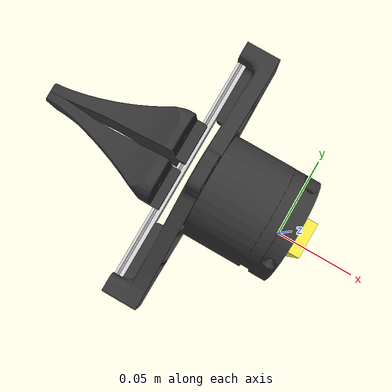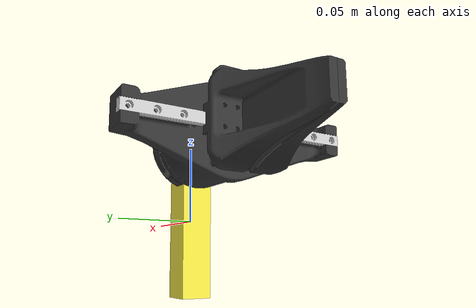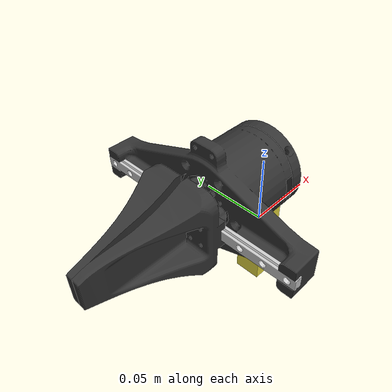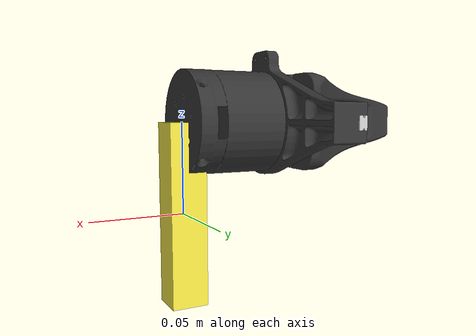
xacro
<robot name="ax_grip" xmlns:xacro="http://www.ros.org/wiki/xacro">
<xacro:macro name="ax_grip" params="parent *origin">

<joint name="mount_joint" type="fixed">
  <parent link="${parent}"/>
  <child link="ax_grip_rod"/>
   <xacro:insert_block name="origin"/>
  </joint>

</xacro:macro>
  <link name="ax_grip_base">
    <inertial>
        <origin xyz="0 0.00034 0.03421" rpy="0 0 0" />
        <mass value="0.1502" />
        <inertia
          ixx="4.31750564711759E-05"
          ixy="-2.21295720427027E-08"
          ixz="-3.27825836857102E-12"
          iyy="9.99756357365307E-05"
          iyz="1.10337380549335E-07"
          izz="0.000118282295533688" />
      </inertial>
      <visual>
        <geometry>
          <mesh filename="file://$(find piper_description)/meshes/gripper_base_link.dae" />
        </geometry>
      </visual>
      <collision>
        <geometry>
          <mesh filename="file://$(find piper_description)/meshes/gripper_base_link.dae" />
        </geometry>
    </collision>
  </link>

  <link name="ax_right_finger">
    <inertial>
        <origin xyz="-0.00027 -0.04676 -0.00921" rpy="0 0 0" />
        <mass value="0.0265" />
        <inertia
          ixx="9.99782519244544E-06"
          ixy="-1.57547595978589E-07"
          ixz="-2.71355785017816E-08"
          iyy="6.17952364356547E-06"
          iyz="-1.58939504838734E-06"
          izz="1.42102253390315E-05" />
      </inertial>
      <visual>
        <geometry>
          <mesh filename="file://$(find piper_description)/meshes/right_finger.dae" />
        </geometry>
      </visual>
      <collision>
        <geometry>
          <mesh filename="file://$(find piper_description)/meshes/right_finger.dae" />
        </geometry>
      </collision>
  </link>

    <link name="ax_left_finger">
      <inertial>
        <origin xyz="0.00027 0.04676 -0.00921" rpy="0 0 0" />
        <mass value="0.0265" />
        <inertia
          ixx="9.99782474142963E-06"
          ixy="-1.57547666236405E-07"
          ixz="2.71355834243046E-08"
          iyy="6.17952362333486E-06"
          iyz="1.58939503259658E-06"
          izz="1.42102248648757E-05" />
      </inertial>
      <visual>
        <geometry>
          <mesh filename="file://$(find piper_description)/meshes/left_finger.dae" />
        </geometry>
      </visual>
      <collision>
        <geometry>
          <mesh filename="file://$(find piper_description)/meshes/left_finger.dae" />
        </geometry>
      </collision>
    </link>

<link name="ax_grip_rod">
  <inertial>
    <origin xyz="0 0 0.05" rpy="0 0 0"/>
    <mass value="0.1"/>
    <inertia
      ixx="0.00000333"
      ixy="0"
      ixz="0"
      iyy="0.00075083"
      iyz="0"
      izz="0.00075083"/>
  </inertial>

  <visual>
    <geometry>
      <box size="0.02 0.02 0.1"/>
    </geometry>
  </visual>

  <collision>
    <geometry>
      <box size="0.02 0.02 0.3"/>
    </geometry>
  </collision>
</link>

<joint name="ax_grip_rod_joint" type="fixed">
  <parent link="ax_grip_rod"/>
  <child link="ax_grip_base"/>
  <origin xyz="0 0 0.05" rpy="0 -1.57 0"/>
</joint>

    <joint name="left_gripper_joint" type="prismatic">
      <origin xyz="0 0 0.13503" rpy="0 0 0" />
      <parent link="ax_grip_base"/>
      <child link="ax_left_finger" />
      <axis xyz="0 -1 0" />
      <limit lower="0" upper="0.038" effort="100" velocity="0.2" />
    </joint>

    <joint name="right_gripper_joint" type="prismatic">
      <origin xyz="0 0 0.13503" rpy="0 0 0" />
      <parent link="ax_grip_base"/>
      <child link="ax_right_finger" />
      <axis xyz="0 1 0" />
      <limit lower="0" upper="0.038" effort="100" velocity="0.2" />
    </joint>

</robot>
